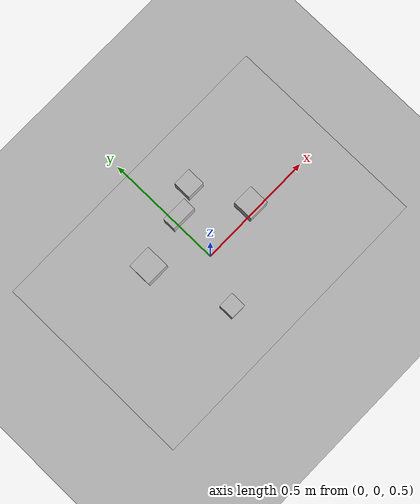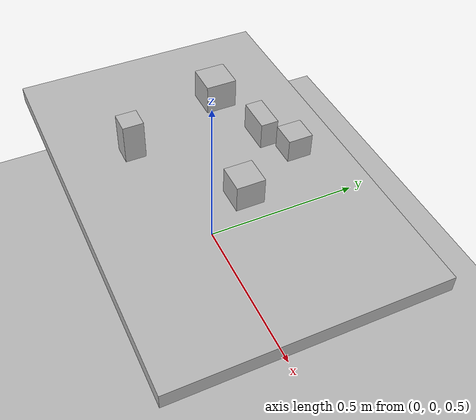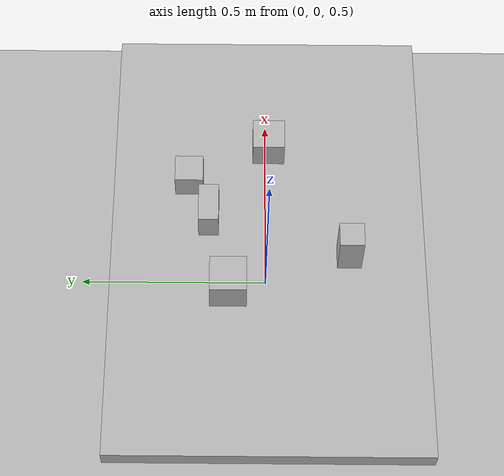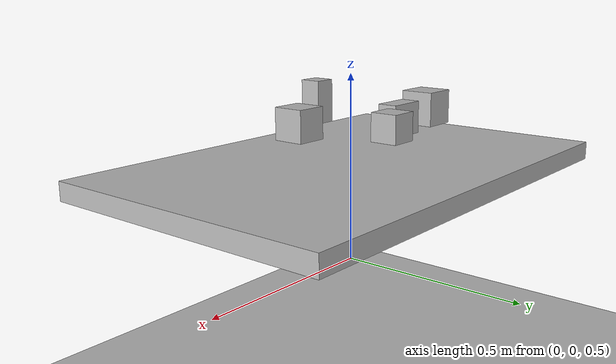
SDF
<?xml version="1.0" ?>
<sdf version="1.9">

<world name="manipulation_world">

	<plugin
  filename="gz-sim-sensors-system"
  name="gz::sim::systems::Sensors">
  <render_engine>ogre2</render_engine>
</plugin>

	<light name="sun" type="directional">
  <cast_shadows>true</cast_shadows>

  <pose>0 0 10 0 0 0</pose>

  <diffuse>1 1 1 1</diffuse>
  <specular>0.5 0.5 0.5 1</specular>

  <direction>-0.5 0.1 -1</direction>
</light>

  <model name="ground">
    <static>true</static>

    <link name="link">

      <collision name="collision">
        <geometry>
          <box>
            <size>20 20 0.1</size>
          </box>
        </geometry>
      </collision>

      <visual name="visual">
        <geometry>
          <box>
            <size>20 20 0.1</size>
          </box>
        </geometry>
      </visual>

    </link>
  </model>

  <model name="table">

  <static>true</static>

  <pose>0 0 0.75 0 0 0</pose>

  <link name="link">

    <collision name="collision">
      <geometry>
        <box>
          <size>2 2 0.1</size>
        </box>
     </geometry>
    </collision>

    <visual name="visual">
      <geometry>
        <box>
          <size>1.2 0.8 0.05</size>
        </box>
      </geometry>
    </visual>

  </link>

</model>

	<model name="cube_1">
  <pose>0.2 0 0.9 0 0 0</pose>
  <link name="link">
    <collision name="collision">
      <geometry>
        <box>
          <size>0.08 0.08 0.08</size>
        </box>
      </geometry>
    </collision>
    <visual name="visual">
      <geometry>
        <box>
          <size>0.08 0.08 0.08</size>
        </box>
      </geometry>
    </visual>
  </link>
</model>

	<model name="cube_2">
  <pose>-0.2 0.1 0.9 0 0 0</pose>
  <link name="link">
    <collision name="collision">
      <geometry>
        <box>
          <size>0.09 0.09 0.09</size>
        </box>
      </geometry>
    </collision>
    <visual name="visual">
      <geometry>
        <box>
          <size>0.09 0.09 0.09</size>
        </box>
      </geometry>
    </visual>
  </link>
</model>

	<model name="cube_3">
  <pose>0.1 0.2 0.9 0 0 0</pose>
  <link name="link">
    <collision name="collision">
      <geometry>
        <box>
          <size>0.07 0.07 0.07</size>
        </box>
      </geometry>
    </collision>
    <visual name="visual">
      <geometry>
        <box>
          <size>0.07 0.07 0.07</size>
        </box>
      </geometry>
    </visual>
  </link>
</model>

	<model name="cube_4">
  <pose>-0.1 -0.2 0.9 0 0 0</pose>
  <link name="link">
    <collision name="collision">
      <geometry>
        <box>
          <size>0.06 0.06 0.12</size>
        </box>
      </geometry>
    </collision>
    <visual name="visual">
      <geometry>
        <box>
          <size>0.06 0.06 0.12</size>
        </box>
      </geometry>
    </visual>
  </link>
</model>

	<model name="cube_5">
  <pose>0 0.15 0.9 0 0 0</pose>
  <link name="link">
    <collision name="collision">
      <geometry>
        <box>
          <size>0.1 0.05 0.08</size>
        </box>
      </geometry>
    </collision>
    <visual name="visual">
      <geometry>
        <box>
          <size>0.1 0.05 0.08</size>
        </box>
      </geometry>
    </visual>
  </link>
</model>

</world>

</sdf>
